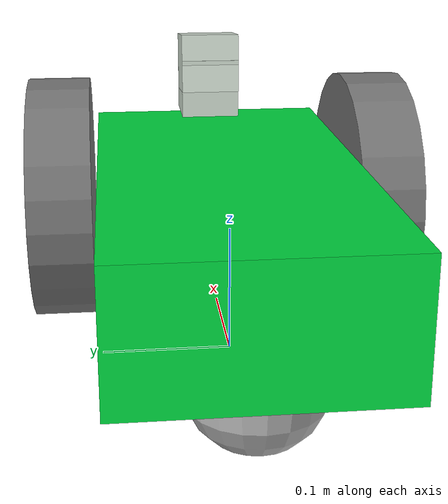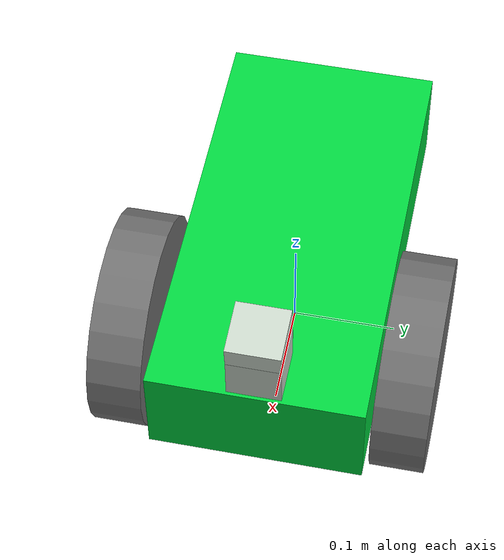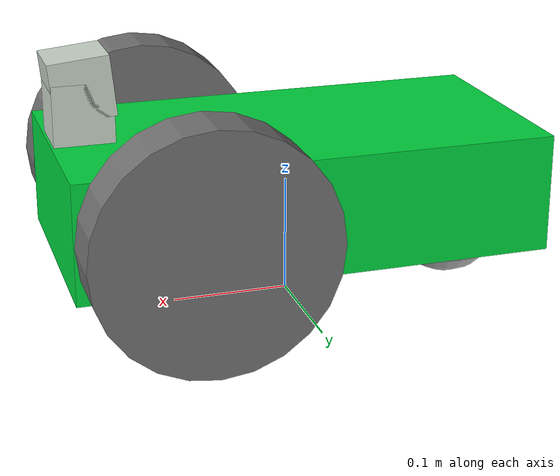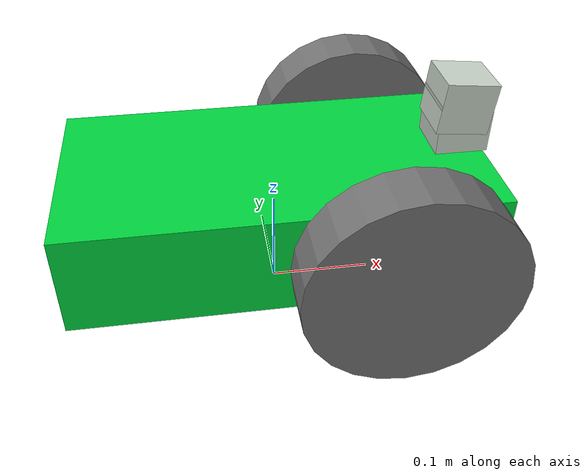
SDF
<?xml version='1.0'?>
<sdf version='1.4'>
	<model name="simple_diff">
		<static>false</static>

		<link name='chassis'>
			<pose>0 0 .1 0 0 0</pose>

			<inertial>
				<mass>5</mass>
				<pose>-.1 0 -.1 0 0 0</pose>
			</inertial>

			<collision name='collision'>
				<geometry>
				<box>
					<size>.4 .2 .1</size>
				</box>
				</geometry>
			</collision>

			<visual name='visual'>
				<geometry>
				<box>
					<size>.4 .2 .1</size>
				</box>
				</geometry>
				<material>
					<ambient>0.5 0.5 0.5 1</ambient>
					<diffuse>0.0 0.85 0.25 1</diffuse>
					<specular>0 0 0 0</specular>
					<emissive>0 0 0 1</emissive>
				</material>
			</visual>

			<collision name='caster_collision'>
				<pose>-0.15 0 -0.05 0 0 0</pose>
				<geometry>
				<sphere>
					<radius>.05</radius>
				</sphere>
				</geometry>

				<surface>
					<friction>
						<ode>
							<mu>0</mu>
							<mu2>0</mu2>
							<slip1>1.0</slip1>
							<slip2>1.0</slip2>
						</ode>
					</friction>
				</surface>
			</collision>

			<visual name='caster_visual'>
				<pose>-0.15 0 -0.05 0 0 0</pose>
				<geometry>
					<sphere>
					<radius>.05</radius>
					</sphere>
				</geometry>
			</visual>
		</link>

		<link name="left_wheel">
			<pose>0.1 0.13 0.1 0 1.5707 1.5707</pose>
			<collision name="collision">
				<geometry>
					<cylinder>
						<radius>.1</radius>
						<length>.05</length>
					</cylinder>
				</geometry>
			</collision>
			<visual name="visual">
				<geometry>
					<cylinder>
						<radius>.1</radius>
						<length>.05</length>
					</cylinder>
				</geometry>
				<material>
					<ambient>0.35 0.35 0.35 1</ambient>
					<diffuse>0.45 0.45 0.45 1</diffuse>
					<specular>0 0 0 0</specular>
					<emissive>0 0 0 1</emissive>
				</material>
			</visual>
		</link>

		<link name="right_wheel">
			<pose>0.1 -0.13 0.1 0 1.5707 1.5707</pose>
			<collision name="collision">
				<geometry>
					<cylinder>
						<radius>.1</radius>
						<length>.05</length>
					</cylinder>
				</geometry>
			</collision>
			<visual name="visual">
				<geometry>
					<cylinder>
						<radius>.1</radius>
						<length>.05</length>
					</cylinder>
				</geometry>
				<material>
					<ambient>0.35 0.35 0.35 1</ambient>
					<diffuse>0.45 0.45 0.45 1</diffuse>
					<specular>0 0 0 0</specular>
					<emissive>0 0 0 1</emissive>
				</material>
			</visual>
		</link>

		<joint type="revolute" name="left_wheel_hinge">
			<pose>0 0 -0.03 0 0 0</pose>
			<child>left_wheel</child>
			<parent>chassis</parent>
			<axis>
				<xyz>0 1 0</xyz>
			</axis>
		</joint>

		<joint type="revolute" name="right_wheel_hinge">
			<pose>0 0 0.03 0 0 0</pose>
			<child>right_wheel</child>
			<parent>chassis</parent>
			<axis>
				<xyz>0 1 0</xyz>
			</axis>
		</joint>

		<link name="lidar_link">
			<gravity>false</gravity>
			<pose>.175 0 .18 0 0 0</pose>
			<inertial>
				<mass>0.1</mass>
			</inertial>
			<visual name="visual">
				<geometry>
					<box>
						<size>0.05 0.05 0.05</size>
					</box>
				</geometry>
				<material>
					<ambient>0.75 0.75 0.75 1</ambient>
					<diffuse>0.8 0.85 0.8 1</diffuse>
					<specular>0 0 0 0</specular>
					<emissive>0 0 0 1</emissive>
				</material>
			</visual>
			<sensor name="lidar" type="ray">
				<pose>0.0 0 0.0 0 0 0</pose>
				<always_on>true</always_on>
				<visualize>true</visualize>
				<update_rate>5</update_rate>
				<ray>
					<scan>
						<horizontal>
							<samples>360</samples>
							<resolution>1.00000</resolution>
							<min_angle>0.000000</min_angle>
							<max_angle>6.280000</max_angle>
						</horizontal>
					</scan>
					<range>
						<min>0.30000</min>
						<max>8</max>
						<resolution>0.015000</resolution>
					</range>
					<noise>
						<type>gaussian</type>
						<mean>0.0</mean>
						<stddev>0.01</stddev>
					</noise>
				</ray>
				<plugin name="scan" filename="libgazebo_ros_ray_sensor.so">
					<ros>
						<remapping>~/out:=scan</remapping>
					</ros>
					<output_type>sensor_msgs/LaserScan</output_type>
					<frame_name>lidar_link</frame_name>
				</plugin>
			</sensor>
		</link>

		<link name="camera_link">
			<gravity>false</gravity>
			<pose>.175 0 .2 0 0.1 0</pose>
			<inertial>
				<mass>0.1</mass>
			</inertial>
			<visual name="visual">
				<geometry>
					<box>
						<size>0.05 0.05 0.05</size>
					</box>
				</geometry>
				<material>
					<ambient>0.75 0.75 0.75 1</ambient>
					<diffuse>0.8 0.85 0.8 1</diffuse>
					<specular>0 0 0 0</specular>
					<emissive>0 0 0 1</emissive>
				</material>
			</visual>
			<sensor name="camera" type="camera">
				<camera>
					<horizontal_fov>2.0</horizontal_fov>
					<image>
						<width>320</width>
						<height>240</height>
						<format>R8G8B8</format>
					</image>

				</camera>
				<always_on>1</always_on>
				<update_rate>10</update_rate>
				<visualize>true</visualize>
				<plugin name="camera_controller" filename="libgazebo_ros_camera.so">
					<ros>
						<namespace>/simple_diff</namespace>
						<!-- TODO(louise) Remapping not working due to https://github.com/ros-perception/image_common/issues/93 -->
					</ros>
				</plugin>
			</sensor>
		</link>

		<joint name="lidar_joint" type="fixed">
			<parent>camera_link</parent>
			<child>lidar_link</child>
		</joint>

		<joint name="camera_joint" type="fixed">
			<parent>chassis</parent>
			<child>camera_link</child>
		</joint>

		<!-- Controls the differential drive robot -->
		<plugin name='diff_drive' filename='libgazebo_ros_diff_drive.so'>
			<ros>
				<namespace>/simple_diff</namespace>
				<remapping>cmd_vel:=cmd_vel</remapping>
				<remapping>odom:=odom</remapping>
			</ros>

			<!-- wheels -->
			<left_joint>left_wheel_hinge</left_joint>
			<right_joint>right_wheel_hinge</right_joint>

			<!-- kinematics -->
			<wheel_separation>0.2</wheel_separation>
			<wheel_diameter>0.2</wheel_diameter>

			<!-- limits -->
			<max_wheel_torque>10</max_wheel_torque>
			<max_wheel_acceleration>0.25</max_wheel_acceleration>

			<!-- output -->
			<publish_odom>true</publish_odom>
			<publish_odom_tf>true</publish_odom_tf>
			<publish_wheel_tf>true</publish_wheel_tf>

			<odometry_frame>odom</odometry_frame>
			<robot_base_frame>chassis</robot_base_frame>
		</plugin>
	</model>
</sdf>
